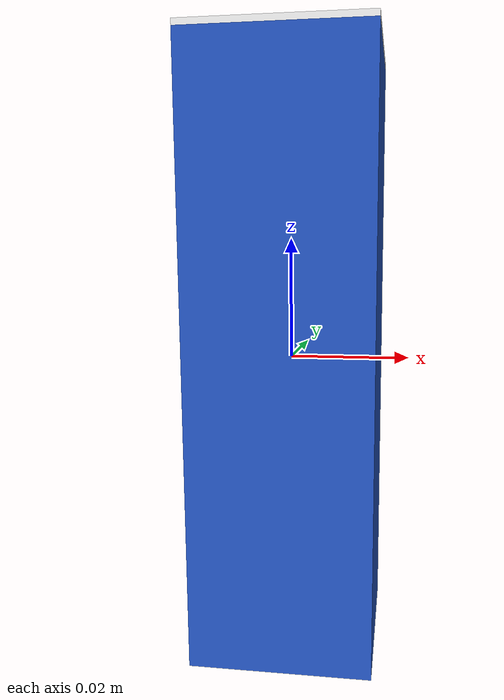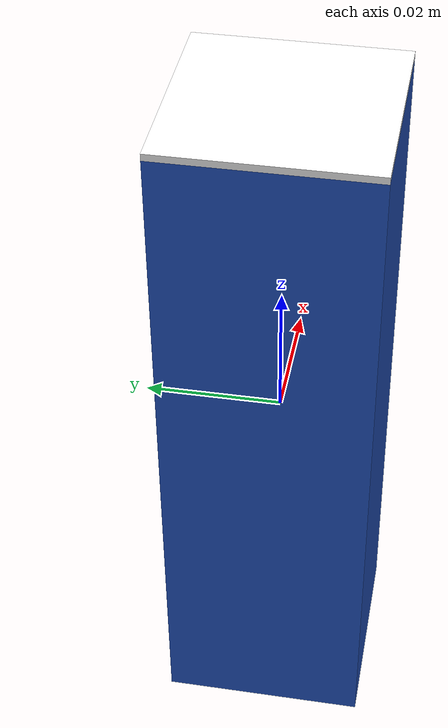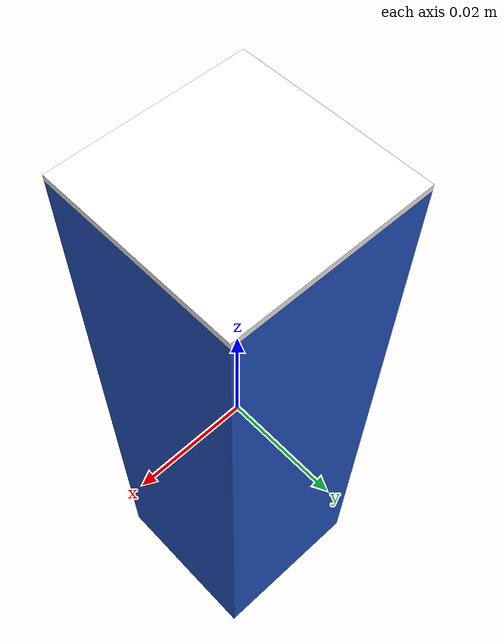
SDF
<?xml version="1.0" ?>
<sdf version="1.7">
  <model name="cube">
    <static>false</static>
    <link name="link">
      <gravity>0</gravity>
      <inertial>
        <mass>0.04</mass>
        <inertia>
          <ixx>3.6e-5</ixx>
          <iyy>3.6e-5</iyy>
          <izz>6.0e-6</izz>
          <ixy>0</ixy><ixz>0</ixz><iyz>0</iyz>
        </inertia>
      </inertial>

      <!-- cube body -->
      <visual name="body">
        <geometry>
          <box><size>0.03 0.03 0.10</size></box>
        </geometry>
        <material>
          <ambient>0.15 0.35 0.8 1</ambient>
          <diffuse>0.15 0.35 0.8 1</diffuse>
        </material>
      </visual>

      <!-- marker plate on the top face (cosmetic) -->
      <visual name="marker_top">
        <pose>0 0 0.0505 0 0 0</pose>
        <geometry>
          <box><size>0.03 0.03 0.001</size></box>
        </geometry>
        <material>
          <ambient>1 1 1 1</ambient>
          <diffuse>1 1 1 1</diffuse>
          <pbr>
            <metal>
              <albedo_map>marker0.png</albedo_map>
              <metalness>0.0</metalness>
              <roughness>1.0</roughness>
            </metal>
          </pbr>
        </material>
      </visual>
    </link>
  </model>
</sdf>
